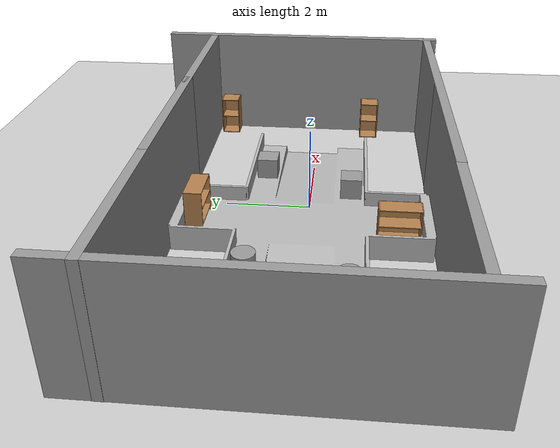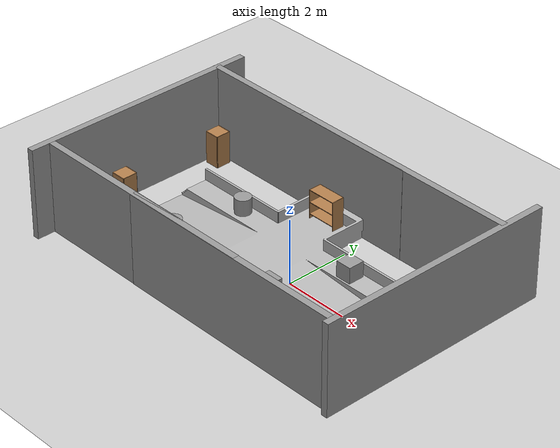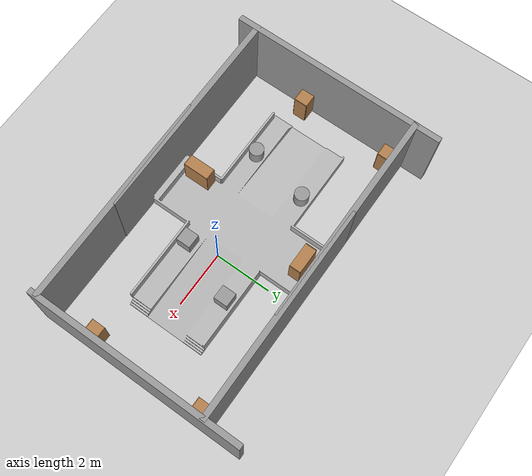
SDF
<sdf version="1.6">
 <world name="default">
  <light name="sun" type="directional">
   <pose>0 0 10 0 -0 0</pose>
   <diffuse>0.8 0.8 0.8 1</diffuse>
   <specular>0.2 0.2 0.2 1</specular>
   <attenuation>
    <range>1000</range>
    <constant>0.9</constant>
    <linear>0.01</linear>
    <quadratic>0.001</quadratic>
   </attenuation>
   <direction>-0.5 0.1 -0.9</direction>
  </light>
  <model name="ground_plane">
   <static>1</static>
   <link name="link">
    <collision name="collision">
     <geometry><plane><normal>0 0 1</normal><size>100 100</size></plane></geometry>
     <surface>
      <contact><collide_bitmask>65535</collide_bitmask></contact>
      <friction><ode><mu>100</mu><mu2>50</mu2></ode></friction>
     </surface>
    </collision>
    <visual name="visual">
     <cast_shadows>0</cast_shadows>
     <geometry><plane><normal>0 0 1</normal><size>100 100</size></plane></geometry>
     <material>
      <script><uri>file://media/materials/scripts/gazebo.material</uri><name>Gazebo/Grey</name></script>
     </material>
    </visual>
   </link>
  </model>
  <gravity>0 0 -9.8</gravity>
  <magnetic_field>6e-06 2.3e-05 -4.2e-05</magnetic_field>
  <atmosphere type="adiabatic"/>
  <physics name="default_physics" default="0" type="ode">
   <max_step_size>0.001</max_step_size>
   <real_time_factor>1</real_time_factor>
   <real_time_update_rate>1000</real_time_update_rate>
  </physics>
  <scene><ambient>0.4 0.4 0.4 1</ambient><background>0.7 0.7 0.7 1</background><shadows>1</shadows></scene>
  <audio><device>default</device></audio>
  <spherical_coordinates>
   <surface_model>EARTH_WGS84</surface_model>
   <latitude_deg>0</latitude_deg>
   <longitude_deg>0</longitude_deg>
   <elevation>0</elevation>
   <heading_deg>0</heading_deg>
  </spherical_coordinates>
  <model name="environment">
   <static>1</static>
   <link name="base">
    <visual name="visual">
     <geometry>
      <mesh><uri>model://environment/meshes/environment.stl</uri><scale>0.7 0.7 0.7</scale></mesh>
     </geometry>
    </visual>
    <collision name="environment_collision">
     <geometry>
      <mesh><uri>model://environment/meshes/environment.stl</uri><scale>0.7 0.7 0.7</scale></mesh>
     </geometry>
     <surface><friction><ode><mu>1</mu><mu2>1</mu2></ode></friction></surface>
    </collision>
   </link>
   <pose>-4.82138 1.43368 -1.04972 1.57 -0 0</pose>
  </model>
  <model name="grey_wall">
   <static>1</static>
   <link name="link">
    <pose>0 0 1.4 0 -0 0</pose>
    <collision name="collision"><geometry><box><size>7.5 0.2 2.8</size></box></geometry></collision>
    <visual name="visual">
     <cast_shadows>0</cast_shadows>
     <geometry><box><size>7.5 0.2 2.8</size></box></geometry>
     <material>
      <script>
       <uri>model://grey_wall/materials/scripts</uri>
       <uri>model://grey_wall/materials/textures</uri>
       <name>vrc/grey_wall</name>
      </script>
     </material>
    </visual>
   </link>
   <pose>-2.55372 -2.91267 0 0 -0 0</pose>
  </model>
  <model name="grey_wall_clone">
   <static>1</static>
   <link name="link">
    <pose>0 0 1.4 0 -0 0</pose>
    <collision name="collision"><geometry><box><size>7.5 0.2 2.8</size></box></geometry></collision>
    <visual name="visual">
     <cast_shadows>0</cast_shadows>
     <geometry><box><size>7.5 0.2 2.8</size></box></geometry>
     <material>
      <script>
       <uri>model://grey_wall/materials/scripts</uri>
       <uri>model://grey_wall/materials/textures</uri>
       <name>vrc/grey_wall</name>
      </script>
     </material>
    </visual>
   </link>
   <pose>0.974361 -2.92441 0 0 -0 0</pose>
  </model>
  <model name="grey_wall_clone_0">
   <static>1</static>
   <link name="link">
    <pose>0 0 1.4 0 -0 0</pose>
    <collision name="collision"><geometry><box><size>7.5 0.2 2.8</size></box></geometry></collision>
    <visual name="visual">
     <cast_shadows>0</cast_shadows>
     <geometry><box><size>7.5 0.2 2.8</size></box></geometry>
     <material>
      <script>
       <uri>model://grey_wall/materials/scripts</uri>
       <uri>model://grey_wall/materials/textures</uri>
       <name>vrc/grey_wall</name>
      </script>
     </material>
    </visual>
   </link>
   <pose>-2.59306 3.01961 0 0 -0 0</pose>
  </model>
  <model name="grey_wall_clone_1">
   <static>1</static>
   <link name="link">
    <pose>0 0 1.4 0 -0 0</pose>
    <collision name="collision"><geometry><box><size>7.5 0.2 2.8</size></box></geometry></collision>
    <visual name="visual">
     <cast_shadows>0</cast_shadows>
     <geometry><box><size>7.5 0.2 2.8</size></box></geometry>
     <material>
      <script>
       <uri>model://grey_wall/materials/scripts</uri>
       <uri>model://grey_wall/materials/textures</uri>
       <name>vrc/grey_wall</name>
      </script>
     </material>
    </visual>
   </link>
   <pose>0.979016 3.02375 0 0 -0 0</pose>
  </model>
  <model name="grey_wall_clone_2_clone">
   <static>1</static>
   <link name="link">
    <pose>0 0 1.4 0 -0 0</pose>
    <collision name="collision"><geometry><box><size>7.5 0.2 2.8</size></box></geometry></collision>
    <visual name="visual">
     <cast_shadows>0</cast_shadows>
     <geometry><box><size>7.5 0.2 2.8</size></box></geometry>
     <material>
      <script>
       <uri>model://grey_wall/materials/scripts</uri>
       <uri>model://grey_wall/materials/textures</uri>
       <name>vrc/grey_wall</name>
      </script>
     </material>
    </visual>
   </link>
   <pose>4.67282 0.561882 0 0 -0 1.57</pose>
  </model>
  <model name="grey_wall_clone_2_clone_0">
   <static>1</static>
   <link name="link">
    <pose>0 0 1.4 0 -0 0</pose>
    <collision name="collision"><geometry><box><size>7.5 0.2 2.8</size></box></geometry></collision>
    <visual name="visual">
     <cast_shadows>0</cast_shadows>
     <geometry><box><size>7.5 0.2 2.8</size></box></geometry>
     <material>
      <script>
       <uri>model://grey_wall/materials/scripts</uri>
       <uri>model://grey_wall/materials/textures</uri>
       <name>vrc/grey_wall</name>
      </script>
     </material>
    </visual>
   </link>
   <pose>-6.2401 0.170848 0 0 -0 1.57</pose>
  </model>
  <model name="cabinet">
   <static>1</static>
   <link name="cabinet_bottom_plate">
    <inertial>
     <pose>0 0 -1 0 -0 0</pose>
     <inertia><ixx>2.05</ixx><ixy>0</ixy><ixz>0</ixz><iyy>2.05</iyy><iyz>0</iyz><izz>2.05</izz></inertia>
     <mass>25</mass>
    </inertial>
    <collision name="cabinet_bottom_plate_geom">
     <pose>0 0 0.01 0 -0 0</pose>
     <geometry><box><size>0.45 0.45 0.02</size></box></geometry>
    </collision>
    <visual name="cabinet_bottom_plate_geom_visual">
     <pose>0 0 0.01 0 -0 0</pose>
     <geometry><box><size>0.45 0.45 0.02</size></box></geometry>
     <material>
      <script><uri>file://media/materials/scripts/gazebo.material</uri><name>Gazebo/Wood</name></script>
     </material>
    </visual>
    <collision name="cabinet_bottom_plate_geom_cabinet_back_plate">
     <pose>0.235 0 0.51 0 -0 0</pose>
     <geometry><box><size>0.02 0.45 1.02</size></box></geometry>
    </collision>
    <visual name="cabinet_bottom_plate_geom_cabinet_back_plate_visual">
     <pose>0.235 0 0.51 0 -0 0</pose>
     <geometry><box><size>0.02 0.45 1.02</size></box></geometry>
     <material>
      <script><uri>file://media/materials/scripts/gazebo.material</uri><name>Gazebo/Wood</name></script>
     </material>
    </visual>
    <collision name="cabinet_bottom_plate_geom_cabinet_left_plate">
     <pose>0 0.235 0.51 0 -0 0</pose>
     <geometry><box><size>0.45 0.02 1.02</size></box></geometry>
    </collision>
    <visual name="cabinet_bottom_plate_geom_cabinet_left_plate_visual">
     <pose>0 0.235 0.51 0 -0 0</pose>
     <geometry><box><size>0.45 0.02 1.02</size></box></geometry>
     <material>
      <script><uri>file://media/materials/scripts/gazebo.material</uri><name>Gazebo/Wood</name></script>
     </material>
    </visual>
    <collision name="cabinet_bottom_plate_geom_cabinet_middle_plate">
     <pose>0 0 0.51 0 -0 0</pose>
     <geometry><box><size>0.45 0.45 0.02</size></box></geometry>
    </collision>
    <visual name="cabinet_bottom_plate_geom_cabinet_middle_plate_visual">
     <pose>0 0 0.51 0 -0 0</pose>
     <geometry><box><size>0.45 0.45 0.02</size></box></geometry>
     <material>
      <script><uri>file://media/materials/scripts/gazebo.material</uri><name>Gazebo/Wood</name></script>
     </material>
    </visual>
    <collision name="cabinet_bottom_plate_geom_cabinet_right_plate">
     <pose>0 -0.235 0.51 0 -0 0</pose>
     <geometry><box><size>0.45 0.02 1.02</size></box></geometry>
    </collision>
    <visual name="cabinet_bottom_plate_geom_cabinet_right_plate_visual">
     <pose>0 -0.235 0.51 0 -0 0</pose>
     <geometry><box><size>0.45 0.02 1.02</size></box></geometry>
     <material>
      <script><uri>file://media/materials/scripts/gazebo.material</uri><name>Gazebo/Wood</name></script>
     </material>
    </visual>
    <collision name="cabinet_bottom_plate_geom_cabinet_top_plate">
     <pose>0 0 1.01 0 -0 0</pose>
     <geometry><box><size>0.45 0.45 0.02</size></box></geometry>
    </collision>
    <visual name="cabinet_bottom_plate_geom_cabinet_top_plate_visual">
     <pose>0 0 1.01 0 -0 0</pose>
     <geometry><box><size>0.45 0.45 0.02</size></box></geometry>
     <material>
      <script><uri>file://media/materials/scripts/gazebo.material</uri><name>Gazebo/Wood</name></script>
     </material>
    </visual>
   </link>
   <pose>-5.82693 2.61076 0 0 -0 0</pose>
  </model>
  <model name="cabinet_clone">
   <static>1</static>
   <link name="cabinet_bottom_plate">
    <inertial>
     <pose>0 0 -1 0 -0 0</pose>
     <inertia><ixx>2.05</ixx><ixy>0</ixy><ixz>0</ixz><iyy>2.05</iyy><iyz>0</iyz><izz>2.05</izz></inertia>
     <mass>25</mass>
    </inertial>
    <collision name="cabinet_bottom_plate_geom">
     <pose>0 0 0.01 0 -0 0</pose>
     <geometry><box><size>0.45 0.45 0.02</size></box></geometry>
    </collision>
    <visual name="cabinet_bottom_plate_geom_visual">
     <pose>0 0 0.01 0 -0 0</pose>
     <geometry><box><size>0.45 0.45 0.02</size></box></geometry>
     <material>
      <script><uri>file://media/materials/scripts/gazebo.material</uri><name>Gazebo/Wood</name></script>
     </material>
    </visual>
    <collision name="cabinet_bottom_plate_geom_cabinet_back_plate">
     <pose>0.235 0 0.51 0 -0 0</pose>
     <geometry><box><size>0.02 0.45 1.02</size></box></geometry>
    </collision>
    <visual name="cabinet_bottom_plate_geom_cabinet_back_plate_visual">
     <pose>0.235 0 0.51 0 -0 0</pose>
     <geometry><box><size>0.02 0.45 1.02</size></box></geometry>
     <material>
      <script><uri>file://media/materials/scripts/gazebo.material</uri><name>Gazebo/Wood</name></script>
     </material>
    </visual>
    <collision name="cabinet_bottom_plate_geom_cabinet_left_plate">
     <pose>0 0.235 0.51 0 -0 0</pose>
     <geometry><box><size>0.45 0.02 1.02</size></box></geometry>
    </collision>
    <visual name="cabinet_bottom_plate_geom_cabinet_left_plate_visual">
     <pose>0 0.235 0.51 0 -0 0</pose>
     <geometry><box><size>0.45 0.02 1.02</size></box></geometry>
     <material>
      <script><uri>file://media/materials/scripts/gazebo.material</uri><name>Gazebo/Wood</name></script>
     </material>
    </visual>
    <collision name="cabinet_bottom_plate_geom_cabinet_middle_plate">
     <pose>0 0 0.51 0 -0 0</pose>
     <geometry><box><size>0.45 0.45 0.02</size></box></geometry>
    </collision>
    <visual name="cabinet_bottom_plate_geom_cabinet_middle_plate_visual">
     <pose>0 0 0.51 0 -0 0</pose>
     <geometry><box><size>0.45 0.45 0.02</size></box></geometry>
     <material>
      <script><uri>file://media/materials/scripts/gazebo.material</uri><name>Gazebo/Wood</name></script>
     </material>
    </visual>
    <collision name="cabinet_bottom_plate_geom_cabinet_right_plate">
     <pose>0 -0.235 0.51 0 -0 0</pose>
     <geometry><box><size>0.45 0.02 1.02</size></box></geometry>
    </collision>
    <visual name="cabinet_bottom_plate_geom_cabinet_right_plate_visual">
     <pose>0 -0.235 0.51 0 -0 0</pose>
     <geometry><box><size>0.45 0.02 1.02</size></box></geometry>
     <material>
      <script><uri>file://media/materials/scripts/gazebo.material</uri><name>Gazebo/Wood</name></script>
     </material>
    </visual>
    <collision name="cabinet_bottom_plate_geom_cabinet_top_plate">
     <pose>0 0 1.01 0 -0 0</pose>
     <geometry><box><size>0.45 0.45 0.02</size></box></geometry>
    </collision>
    <visual name="cabinet_bottom_plate_geom_cabinet_top_plate_visual">
     <pose>0 0 1.01 0 -0 0</pose>
     <geometry><box><size>0.45 0.45 0.02</size></box></geometry>
     <material>
      <script><uri>file://media/materials/scripts/gazebo.material</uri><name>Gazebo/Wood</name></script>
     </material>
    </visual>
   </link>
   <pose>-5.90971 -0.713104 0 0 -0 0</pose>
  </model>
  <model name="cabinet_clone_0">
   <static>1</static>
   <link name="cabinet_bottom_plate">
    <inertial>
     <pose>0 0 -1 0 -0 0</pose>
     <inertia><ixx>2.05</ixx><ixy>0</ixy><ixz>0</ixz><iyy>2.05</iyy><iyz>0</iyz><izz>2.05</izz></inertia>
     <mass>25</mass>
    </inertial>
    <collision name="cabinet_bottom_plate_geom">
     <pose>0 0 0.01 0 -0 0</pose>
     <geometry><box><size>0.45 0.45 0.02</size></box></geometry>
    </collision>
    <visual name="cabinet_bottom_plate_geom_visual">
     <pose>0 0 0.01 0 -0 0</pose>
     <geometry><box><size>0.45 0.45 0.02</size></box></geometry>
     <material>
      <script><uri>file://media/materials/scripts/gazebo.material</uri><name>Gazebo/Wood</name></script>
     </material>
    </visual>
    <collision name="cabinet_bottom_plate_geom_cabinet_back_plate">
     <pose>0.235 0 0.51 0 -0 0</pose>
     <geometry><box><size>0.02 0.45 1.02</size></box></geometry>
    </collision>
    <visual name="cabinet_bottom_plate_geom_cabinet_back_plate_visual">
     <pose>0.235 0 0.51 0 -0 0</pose>
     <geometry><box><size>0.02 0.45 1.02</size></box></geometry>
     <material>
      <script><uri>file://media/materials/scripts/gazebo.material</uri><name>Gazebo/Wood</name></script>
     </material>
    </visual>
    <collision name="cabinet_bottom_plate_geom_cabinet_left_plate">
     <pose>0 0.235 0.51 0 -0 0</pose>
     <geometry><box><size>0.45 0.02 1.02</size></box></geometry>
    </collision>
    <visual name="cabinet_bottom_plate_geom_cabinet_left_plate_visual">
     <pose>0 0.235 0.51 0 -0 0</pose>
     <geometry><box><size>0.45 0.02 1.02</size></box></geometry>
     <material>
      <script><uri>file://media/materials/scripts/gazebo.material</uri><name>Gazebo/Wood</name></script>
     </material>
    </visual>
    <collision name="cabinet_bottom_plate_geom_cabinet_middle_plate">
     <pose>0 0 0.51 0 -0 0</pose>
     <geometry><box><size>0.45 0.45 0.02</size></box></geometry>
    </collision>
    <visual name="cabinet_bottom_plate_geom_cabinet_middle_plate_visual">
     <pose>0 0 0.51 0 -0 0</pose>
     <geometry><box><size>0.45 0.45 0.02</size></box></geometry>
     <material>
      <script><uri>file://media/materials/scripts/gazebo.material</uri><name>Gazebo/Wood</name></script>
     </material>
    </visual>
    <collision name="cabinet_bottom_plate_geom_cabinet_right_plate">
     <pose>0 -0.235 0.51 0 -0 0</pose>
     <geometry><box><size>0.45 0.02 1.02</size></box></geometry>
    </collision>
    <visual name="cabinet_bottom_plate_geom_cabinet_right_plate_visual">
     <pose>0 -0.235 0.51 0 -0 0</pose>
     <geometry><box><size>0.45 0.02 1.02</size></box></geometry>
     <material>
      <script><uri>file://media/materials/scripts/gazebo.material</uri><name>Gazebo/Wood</name></script>
     </material>
    </visual>
    <collision name="cabinet_bottom_plate_geom_cabinet_top_plate">
     <pose>0 0 1.01 0 -0 0</pose>
     <geometry><box><size>0.45 0.45 0.02</size></box></geometry>
    </collision>
    <visual name="cabinet_bottom_plate_geom_cabinet_top_plate_visual">
     <pose>0 0 1.01 0 -0 0</pose>
     <geometry><box><size>0.45 0.45 0.02</size></box></geometry>
     <material>
      <script><uri>file://media/materials/scripts/gazebo.material</uri><name>Gazebo/Wood</name></script>
     </material>
    </visual>
   </link>
   <pose>4.31154 -1.43874 0 0 -0 0</pose>
  </model>
  <model name="cabinet_clone_1">
   <static>1</static>
   <link name="cabinet_bottom_plate">
    <inertial>
     <pose>0 0 -1 0 -0 0</pose>
     <inertia><ixx>2.05</ixx><ixy>0</ixy><ixz>0</ixz><iyy>2.05</iyy><iyz>0</iyz><izz>2.05</izz></inertia>
     <mass>25</mass>
    </inertial>
    <collision name="cabinet_bottom_plate_geom">
     <pose>0 0 0.01 0 -0 0</pose>
     <geometry><box><size>0.45 0.45 0.02</size></box></geometry>
    </collision>
    <visual name="cabinet_bottom_plate_geom_visual">
     <pose>0 0 0.01 0 -0 0</pose>
     <geometry><box><size>0.45 0.45 0.02</size></box></geometry>
     <material>
      <script><uri>file://media/materials/scripts/gazebo.material</uri><name>Gazebo/Wood</name></script>
     </material>
    </visual>
    <collision name="cabinet_bottom_plate_geom_cabinet_back_plate">
     <pose>0.235 0 0.51 0 -0 0</pose>
     <geometry><box><size>0.02 0.45 1.02</size></box></geometry>
    </collision>
    <visual name="cabinet_bottom_plate_geom_cabinet_back_plate_visual">
     <pose>0.235 0 0.51 0 -0 0</pose>
     <geometry><box><size>0.02 0.45 1.02</size></box></geometry>
     <material>
      <script><uri>file://media/materials/scripts/gazebo.material</uri><name>Gazebo/Wood</name></script>
     </material>
    </visual>
    <collision name="cabinet_bottom_plate_geom_cabinet_left_plate">
     <pose>0 0.235 0.51 0 -0 0</pose>
     <geometry><box><size>0.45 0.02 1.02</size></box></geometry>
    </collision>
    <visual name="cabinet_bottom_plate_geom_cabinet_left_plate_visual">
     <pose>0 0.235 0.51 0 -0 0</pose>
     <geometry><box><size>0.45 0.02 1.02</size></box></geometry>
     <material>
      <script><uri>file://media/materials/scripts/gazebo.material</uri><name>Gazebo/Wood</name></script>
     </material>
    </visual>
    <collision name="cabinet_bottom_plate_geom_cabinet_middle_plate">
     <pose>0 0 0.51 0 -0 0</pose>
     <geometry><box><size>0.45 0.45 0.02</size></box></geometry>
    </collision>
    <visual name="cabinet_bottom_plate_geom_cabinet_middle_plate_visual">
     <pose>0 0 0.51 0 -0 0</pose>
     <geometry><box><size>0.45 0.45 0.02</size></box></geometry>
     <material>
      <script><uri>file://media/materials/scripts/gazebo.material</uri><name>Gazebo/Wood</name></script>
     </material>
    </visual>
    <collision name="cabinet_bottom_plate_geom_cabinet_right_plate">
     <pose>0 -0.235 0.51 0 -0 0</pose>
     <geometry><box><size>0.45 0.02 1.02</size></box></geometry>
    </collision>
    <visual name="cabinet_bottom_plate_geom_cabinet_right_plate_visual">
     <pose>0 -0.235 0.51 0 -0 0</pose>
     <geometry><box><size>0.45 0.02 1.02</size></box></geometry>
     <material>
      <script><uri>file://media/materials/scripts/gazebo.material</uri><name>Gazebo/Wood</name></script>
     </material>
    </visual>
    <collision name="cabinet_bottom_plate_geom_cabinet_top_plate">
     <pose>0 0 1.01 0 -0 0</pose>
     <geometry><box><size>0.45 0.45 0.02</size></box></geometry>
    </collision>
    <visual name="cabinet_bottom_plate_geom_cabinet_top_plate_visual">
     <pose>0 0 1.01 0 -0 0</pose>
     <geometry><box><size>0.45 0.45 0.02</size></box></geometry>
     <material>
      <script><uri>file://media/materials/scripts/gazebo.material</uri><name>Gazebo/Wood</name></script>
     </material>
    </visual>
   </link>
   <pose>4.31549 2.58834 0 0 -0 0</pose>
  </model>
  <model name="bookshelf">
   <static>1</static>
   <link name="link">
    <inertial><mass>1</mass></inertial>
    <collision name="back">
     <pose>0 0.005 0.6 0 -0 0</pose>
     <geometry><box><size>0.9 0.01 1.2</size></box></geometry>
    </collision>
    <visual name="visual1">
     <pose>0 0.005 0.6 0 -0 0</pose>
     <geometry><box><size>0.9 0.01 1.2</size></box></geometry>
     <material>
      <script><uri>file://media/materials/scripts/gazebo.material</uri><name>Gazebo/Wood</name></script>
     </material>
    </visual>
    <collision name="left_side">
     <pose>0.45 -0.195 0.6 0 -0 0</pose>
     <geometry><box><size>0.02 0.4 1.2</size></box></geometry>
    </collision>
    <visual name="visual2">
     <pose>0.45 -0.195 0.6 0 -0 0</pose>
     <geometry><box><size>0.02 0.4 1.2</size></box></geometry>
     <material>
      <script><uri>file://media/materials/scripts/gazebo.material</uri><name>Gazebo/Wood</name></script>
     </material>
    </visual>
    <collision name="right_side">
     <pose>-0.45 -0.195 0.6 0 -0 0</pose>
     <geometry><box><size>0.02 0.4 1.2</size></box></geometry>
    </collision>
    <visual name="visual3">
     <pose>-0.45 -0.195 0.6 0 -0 0</pose>
     <geometry><box><size>0.02 0.4 1.2</size></box></geometry>
     <material>
      <script><uri>file://media/materials/scripts/gazebo.material</uri><name>Gazebo/Wood</name></script>
     </material>
    </visual>
    <collision name="bottom">
     <pose>0 -0.195 0.03 0 -0 0</pose>
     <geometry><box><size>0.88 0.4 0.06</size></box></geometry>
    </collision>
    <visual name="visual4">
     <pose>0 -0.195 0.03 0 -0 0</pose>
     <geometry><box><size>0.88 0.4 0.06</size></box></geometry>
     <material>
      <script><uri>file://media/materials/scripts/gazebo.material</uri><name>Gazebo/Wood</name></script>
     </material>
    </visual>
    <collision name="top">
     <pose>0 -0.195 1.19 0 -0 0</pose>
     <geometry><box><size>0.88 0.4 0.02</size></box></geometry>
    </collision>
    <visual name="visual5">
     <pose>0 -0.195 1.19 0 -0 0</pose>
     <geometry><box><size>0.88 0.4 0.02</size></box></geometry>
     <material>
      <script><uri>file://media/materials/scripts/gazebo.material</uri><name>Gazebo/Wood</name></script>
     </material>
    </visual>
    <collision name="low_shelf">
     <pose>0 -0.195 0.43 0 -0 0</pose>
     <geometry><box><size>0.88 0.4 0.02</size></box></geometry>
    </collision>
    <visual name="visual6">
     <pose>0 -0.195 0.43 0 -0 0</pose>
     <geometry><box><size>0.88 0.4 0.02</size></box></geometry>
     <material>
      <script><uri>file://media/materials/scripts/gazebo.material</uri><name>Gazebo/Wood</name></script>
     </material>
    </visual>
    <collision name="high_shelf">
     <pose>0 -0.195 0.8 0 -0 0</pose>
     <geometry><box><size>0.88 0.4 0.02</size></box></geometry>
    </collision>
    <visual name="visual7">
     <pose>0 -0.195 0.8 0 -0 0</pose>
     <geometry><box><size>0.88 0.4 0.02</size></box></geometry>
     <material>
      <script><uri>file://media/materials/scripts/gazebo.material</uri><name>Gazebo/Wood</name></script>
     </material>
    </visual>
   </link>
   <pose>-1.18565 2.63133 0 0 -0 0</pose>
  </model>
  <model name="bookshelf_0">
   <static>1</static>
   <link name="link">
    <inertial><mass>1</mass></inertial>
    <collision name="back">
     <pose>0 0.005 0.6 0 -0 0</pose>
     <geometry><box><size>0.9 0.01 1.2</size></box></geometry>
    </collision>
    <visual name="visual1">
     <pose>0 0.005 0.6 0 -0 0</pose>
     <geometry><box><size>0.9 0.01 1.2</size></box></geometry>
     <material>
      <script><uri>file://media/materials/scripts/gazebo.material</uri><name>Gazebo/Wood</name></script>
     </material>
    </visual>
    <collision name="left_side">
     <pose>0.45 -0.195 0.6 0 -0 0</pose>
     <geometry><box><size>0.02 0.4 1.2</size></box></geometry>
    </collision>
    <visual name="visual2">
     <pose>0.45 -0.195 0.6 0 -0 0</pose>
     <geometry><box><size>0.02 0.4 1.2</size></box></geometry>
     <material>
      <script><uri>file://media/materials/scripts/gazebo.material</uri><name>Gazebo/Wood</name></script>
     </material>
    </visual>
    <collision name="right_side">
     <pose>-0.45 -0.195 0.6 0 -0 0</pose>
     <geometry><box><size>0.02 0.4 1.2</size></box></geometry>
    </collision>
    <visual name="visual3">
     <pose>-0.45 -0.195 0.6 0 -0 0</pose>
     <geometry><box><size>0.02 0.4 1.2</size></box></geometry>
     <material>
      <script><uri>file://media/materials/scripts/gazebo.material</uri><name>Gazebo/Wood</name></script>
     </material>
    </visual>
    <collision name="bottom">
     <pose>0 -0.195 0.03 0 -0 0</pose>
     <geometry><box><size>0.88 0.4 0.06</size></box></geometry>
    </collision>
    <visual name="visual4">
     <pose>0 -0.195 0.03 0 -0 0</pose>
     <geometry><box><size>0.88 0.4 0.06</size></box></geometry>
     <material>
      <script><uri>file://media/materials/scripts/gazebo.material</uri><name>Gazebo/Wood</name></script>
     </material>
    </visual>
    <collision name="top">
     <pose>0 -0.195 1.19 0 -0 0</pose>
     <geometry><box><size>0.88 0.4 0.02</size></box></geometry>
    </collision>
    <visual name="visual5">
     <pose>0 -0.195 1.19 0 -0 0</pose>
     <geometry><box><size>0.88 0.4 0.02</size></box></geometry>
     <material>
      <script><uri>file://media/materials/scripts/gazebo.material</uri><name>Gazebo/Wood</name></script>
     </material>
    </visual>
    <collision name="low_shelf">
     <pose>0 -0.195 0.43 0 -0 0</pose>
     <geometry><box><size>0.88 0.4 0.02</size></box></geometry>
    </collision>
    <visual name="visual6">
     <pose>0 -0.195 0.43 0 -0 0</pose>
     <geometry><box><size>0.88 0.4 0.02</size></box></geometry>
     <material>
      <script><uri>file://media/materials/scripts/gazebo.material</uri><name>Gazebo/Wood</name></script>
     </material>
    </visual>
    <collision name="high_shelf">
     <pose>0 -0.195 0.8 0 -0 0</pose>
     <geometry><box><size>0.88 0.4 0.02</size></box></geometry>
    </collision>
    <visual name="visual7">
     <pose>0 -0.195 0.8 0 -0 0</pose>
     <geometry><box><size>0.88 0.4 0.02</size></box></geometry>
     <material>
      <script><uri>file://media/materials/scripts/gazebo.material</uri><name>Gazebo/Wood</name></script>
     </material>
    </visual>
   </link>
   <pose>-1.58042 -2.0015 0 0 0 -1.57058</pose>
  </model>
  <model name="unit_box">
   <pose>0.251837 -0.976432 0.5322 -0.000796 -0 -1.7e-05</pose>
   <link name="link">
    <inertial>
     <mass>1</mass>
     <inertia>
      <ixx>0.166667</ixx>
      <ixy>0</ixy>
      <ixz>0</ixz>
      <iyy>0.166667</iyy>
      <iyz>0</iyz>
      <izz>0.166667</izz>
     </inertia>
    </inertial>
    <collision name="collision"><geometry><box><size>0.5 0.5 0.5</size></box></geometry></collision>
    <visual name="visual">
     <geometry><box><size>0.5 0.5 0.5</size></box></geometry>
     <material>
      <script><name>Gazebo/Grey</name><uri>file://media/materials/scripts/gazebo.material</uri></script>
     </material>
    </visual>
   </link>
  </model>
  <model name="unit_box_0">
   <pose>1.11025 1.11144 0.530537 -0.0008 -1e-06 0</pose>
   <link name="link">
    <inertial>
     <mass>1</mass>
     <inertia>
      <ixx>0.166667</ixx>
      <ixy>0</ixy>
      <ixz>0</ixz>
      <iyy>0.166667</iyy>
      <iyz>0</iyz>
      <izz>0.166667</izz>
     </inertia>
    </inertial>
    <collision name="collision"><geometry><box><size>0.5 0.5 0.5</size></box></geometry></collision>
    <visual name="visual">
     <geometry><box><size>0.5 0.5 0.5</size></box></geometry>
     <material>
      <script><name>Gazebo/Grey</name><uri>file://media/materials/scripts/gazebo.material</uri></script>
     </material>
    </visual>
   </link>
  </model>
  <model name="unit_cylinder">
   <pose>-3.09319 1.1212 0.53052 -0.000796 -0 -0</pose>
   <link name="link">
    <inertial>
     <mass>1</mass>
     <inertia><ixx>0.145833</ixx><ixy>0</ixy><ixz>0</ixz><iyy>0.145833</iyy><iyz>0</iyz><izz>0.125</izz></inertia>
    </inertial>
    <collision name="collision">
     <geometry><cylinder><radius>0.25</radius><length>0.5</length></cylinder></geometry>
    </collision>
    <visual name="visual">
     <geometry><cylinder><radius>0.25</radius><length>0.5</length></cylinder></geometry>
     <material>
      <script><name>Gazebo/Grey</name><uri>file://media/materials/scripts/gazebo.material</uri></script>
     </material>
    </visual>
   </link>
  </model>
  <model name="unit_cylinder_0">
   <pose>-3.53446 -0.98061 0.532199 -0.000801 -6e-06 -3e-06</pose>
   <link name="link">
    <inertial>
     <mass>1</mass>
     <inertia><ixx>0.145833</ixx><ixy>0</ixy><ixz>0</ixz><iyy>0.145833</iyy><iyz>0</iyz><izz>0.125</izz></inertia>
    </inertial>
    <collision name="collision">
     <geometry><cylinder><radius>0.25</radius><length>0.5</length></cylinder></geometry>
    </collision>
    <visual name="visual">
     <geometry><cylinder><radius>0.25</radius><length>0.5</length></cylinder></geometry>
     <material>
      <script><name>Gazebo/Grey</name><uri>file://media/materials/scripts/gazebo.material</uri></script>
     </material>
    </visual>
   </link>
  </model>
 </world>
</sdf>
